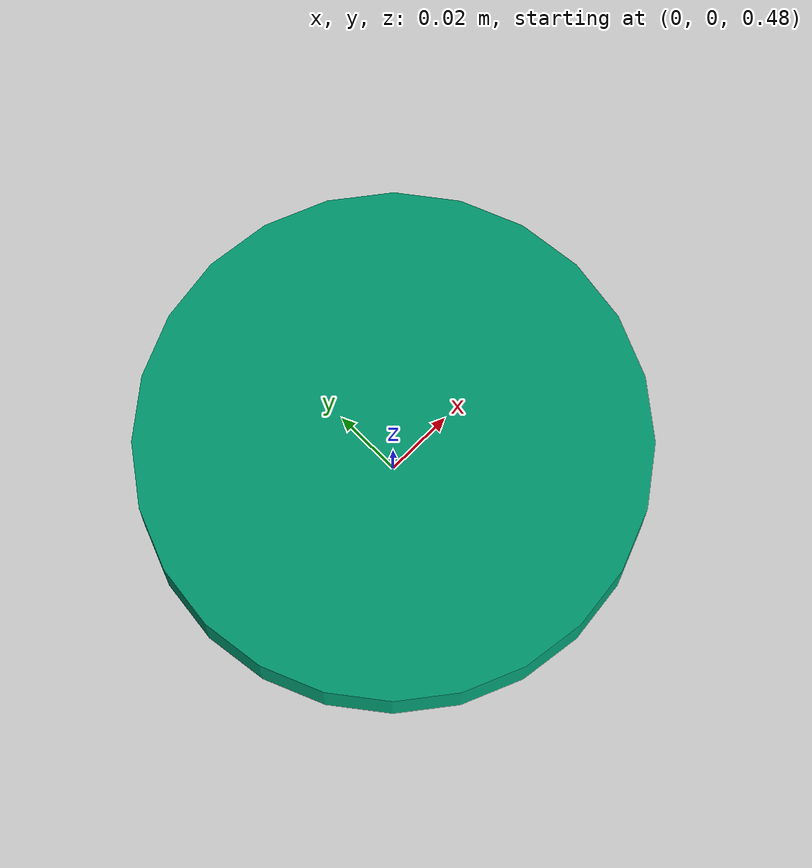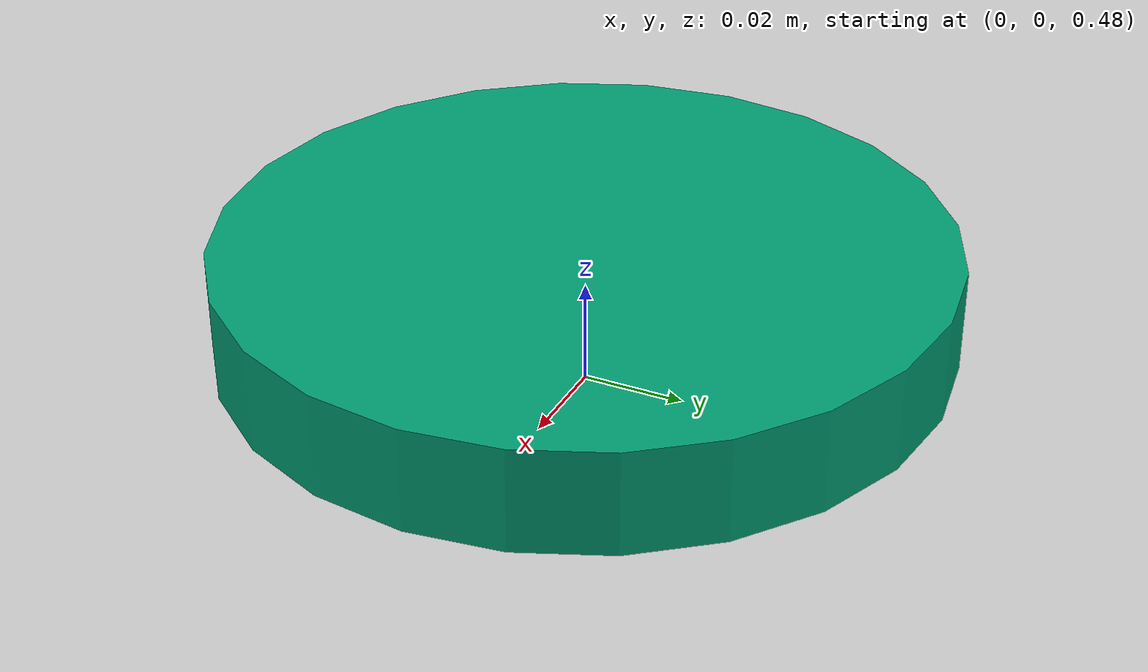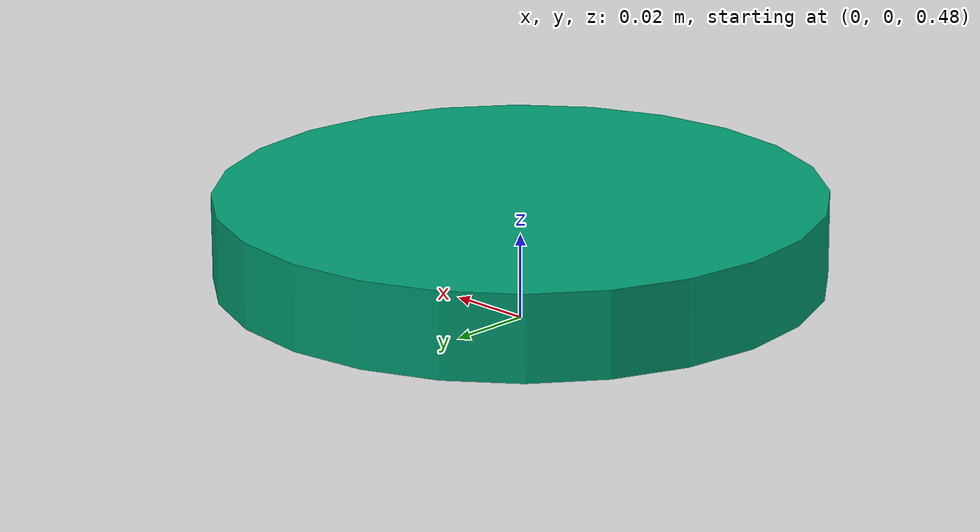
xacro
<?xml version="1.0" encoding="utf-8"?>
<robot name="fake_valve" xmlns:xacro="http://www.ros.org/wiki/xacro">
   <xacro:arg name="x"      default="0.0"/>
   <xacro:arg name="y"      default="0.0"/>
   <xacro:arg name="z"      default="0.5"/>
   <xacro:arg name="roll"   default="0.0"/>
   <xacro:arg name="pitch"  default="0.0"/>
   <xacro:arg name="yaw"    default="0.0"/>

   <link name="world">
   </link>

  <joint name="valve_base_joint" type="fixed">
      <origin xyz="$(arg x) $(arg y) $(arg z)" rpy="3.14 $(arg pitch) $(arg yaw)"/>
      <parent link="world"/>
      <child link="valve_base"/>
   </joint>

  <link name="valve_base">
    <inertial>
      <mass value="0.01" />
      <origin xyz="0 0 0.0"  rpy="0 0 0"/>
      <inertia
        ixx = "0.000001" ixy = "0.0" ixz = "0.0"
        iyy = "0.000001" iyz = "0.0"
        izz = "0.000001" />
      </inertial>
  </link>

  <link name="wheel">
    <contact>
      <friction_anchor/>
      <stiffness value="30000.0"/>
      <damping value="1000.0"/>
      <spinning_friction value="0.1"/>
      <lateral_friction value="1.0"/>
    </contact>
    <inertial>
      <origin xyz="0 0 0" rpy="0 0 0"/>
      <mass value="1.0" />
      <!-- Inertia of a torus radius = 0.12 and cross section radius 0.02-->
      <inertia
        ixx = "0.00745" ixy = "0.0" ixz = "0.0"
        iyy = "0.0147" iyz = "0.0"
        izz = "0.00745" />
    </inertial>

    <visual>
      <origin xyz="0 0 0" rpy="0 0 0"/>
      <geometry>
        <cylinder radius="0.07" length="0.02"/>
      </geometry>
    </visual>
  </link>

  <joint name="wheel_joint" type="continuous">
    <origin xyz="0 0 0" rpy="0.0 0 0"/>
    <axis xyz="0 0 1" rpy="0 0 0"/>
    <parent link="valve_base"/>
    <child link="wheel"/>
    <dynamics damping="10.0" friction="10.0"/>
    <limit effort="30" velocity="1.0" lower="-3.14" upper="3.14"/>
  </joint>

  <!-- Gazebo simulation -->
  <transmission name="wheel_joint_transmission">
    <type>transmission_interface/SimpleTransmission</type>
    <joint name="wheel_joint">
      <hardwareInterface>hardware_interface/EffortJointInterface</hardwareInterface>
    </joint>
    <actuator name="wheel_joint_motor">
      <mechanicalReduction>1</mechanicalReduction>
    </actuator>
  </transmission>

  <gazebo>
    <plugin name="gazebo_ros_control" filename="libgazebo_ros_control.so">
      <legacyModeNS>true</legacyModeNS>
      <robotParam>valve_description</robotParam>
      <robotNamespace>valve</robotNamespace>
    </plugin>
  </gazebo>
</robot>
